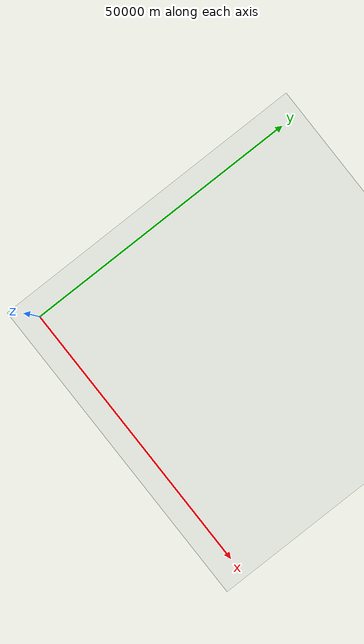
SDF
<sdf version="1.7">
 <world name="default">
  <light name="sun" type="directional">
   <pose>0 0 10 0 -0 0</pose>
   <diffuse>0.8 0.8 0.8 1</diffuse>
   <specular>0.2 0.2 0.2 1</specular>
   <attenuation>
    <range>1000</range>
    <constant>0.9</constant>
    <linear>0.01</linear>
    <quadratic>0.001</quadratic>
   </attenuation>
   <direction>-0.5 0.1 -0.9</direction>
   <spot><inner_angle>0</inner_angle><outer_angle>0</outer_angle><falloff>0</falloff></spot>
  </light>
  <model name="ground_plane">
   <static>1</static>
   <link name="link">
    <collision name="collision">
     <geometry><plane><normal>0 0 1</normal><size>100 100</size></plane></geometry>
     <surface><friction><ode><mu>100</mu><mu2>50</mu2></ode></friction></surface>
    </collision>
    <visual name="visual">
     <cast_shadows>0</cast_shadows>
     <geometry><plane><normal>0 0 1</normal><size>100 100</size></plane></geometry>
     <material>
      <script><uri>file://media/materials/scripts/gazebo.material</uri><name>Gazebo/Grey</name></script>
     </material>
    </visual>
   </link>
  </model>
  <gravity>0 0 -9.8</gravity>
  <magnetic_field>6e-06 2.3e-05 -4.2e-05</magnetic_field>
  <atmosphere type="adiabatic"/>
  <physics type="ode">
   <max_step_size>0.001</max_step_size>
   <real_time_factor>1</real_time_factor>
   <real_time_update_rate>1000</real_time_update_rate>
  </physics>
  <scene><ambient>0.4 0.4 0.4 1</ambient><background>0.7 0.7 0.7 1</background><shadows>1</shadows></scene>
  <audio><device>default</device></audio>
  <spherical_coordinates>
   <surface_model>EARTH_WGS84</surface_model>
   <latitude_deg>0</latitude_deg>
   <longitude_deg>0</longitude_deg>
   <elevation>0</elevation>
   <heading_deg>0</heading_deg>
  </spherical_coordinates>
  <model name="aruco_marker">
   <link name="link">
    <inertial>
     <mass>0.001</mass>
     <inertia>
      <ixx>3.75e-06</ixx>
      <ixy>0</ixy>
      <ixz>0</ixz>
      <iyy>1.875e-06</iyy>
      <iyz>0</iyz>
      <izz>1.875e-06</izz>
     </inertia>
    </inertial>
    <visual name="front_visual">
     <pose>5e-05 0 0 0 -0 0</pose>
     <geometry><box><size>0 0.15 0.15</size></box></geometry>
     <material>
      <script>
       <uri>model://aruco_marker/materials/scripts</uri>
       <uri>model://aruco_marker/materials/textures</uri>
       <name>Marker</name>
      </script>
     </material>
    </visual>
    <visual name="rear_visual">
     <pose>-5e-05 0 0 0 -0 0</pose>
     <geometry><box><size>0 0.15 0.15</size></box></geometry>
    </visual>
    <collision name="collision"><geometry><box><size>0 0.15 0.15</size></box></geometry></collision>
    <enable_wind>1</enable_wind>
   </link>
   <pose>-2.35803 0.304206 -350252 -0.000978 -0.382776 -2.5e-05</pose>
   <enable_wind>1</enable_wind>
  </model>
  <model name="aruco_marker_69_1">
   <link name="link">
    <inertial>
     <mass>0.515459</mass>
     <inertia>
      <ixx>0.00193297</ixx>
      <ixy>0</ixy>
      <ixz>0</ixz>
      <iyy>0.00322092</iyy>
      <iyz>0</iyz>
      <izz>0.00322092</izz>
     </inertia>
    </inertial>
    <enable_wind>1</enable_wind>
    <kinematic>1</kinematic>
    <visual name="front_visual">
     <pose>5e-05 0 0 0 -0 0</pose>
     <geometry><box><size>0.229093 0.186378 0.172656</size></box></geometry>
     <material>
      <script>
       <uri>model://aruco_marker/materials/scripts</uri>
       <uri>model://aruco_marker/materials/textures</uri>
       <name>Marker</name>
      </script>
      <shader type="pixel"><normal_map>__default__</normal_map></shader>
     </material>
    </visual>
    <visual name="rear_visual">
     <pose>-5e-05 0 0 0 -0 0</pose>
     <geometry><box><size>0.229093 0.186378 0.172656</size></box></geometry>
     <material><shader type="pixel"><normal_map>__default__</normal_map></shader></material>
    </visual>
    <collision name="collision">
     <geometry><box><size>0.229093 0.186378 0.172656</size></box></geometry>
     <surface>
      <friction>
       <ode><mu>1</mu><mu2>1</mu2><fdir1>0 0 0</fdir1><slip1>0</slip1><slip2>0</slip2></ode>
       <torsional>
        <coefficient>1</coefficient>
        <patch_radius>0</patch_radius>
        <surface_radius>0</surface_radius>
        <use_patch_radius>1</use_patch_radius>
        <ode><slip>0</slip></ode>
       </torsional>
      </friction>
      <bounce><restitution_coefficient>0</restitution_coefficient><threshold>1e+06</threshold></bounce>
      <contact>
       <collide_without_contact>0</collide_without_contact>
       <collide_without_contact_bitmask>1</collide_without_contact_bitmask>
       <collide_bitmask>1</collide_bitmask>
       <ode>
        <soft_cfm>0</soft_cfm>
        <soft_erp>0.2</soft_erp>
        <kp>1e+13</kp>
        <kd>1</kd>
        <max_vel>0.01</max_vel>
        <min_depth>0</min_depth>
       </ode>
       <bullet>
        <split_impulse>1</split_impulse>
        <split_impulse_penetration_threshold>-0.01</split_impulse_penetration_threshold>
        <soft_cfm>0</soft_cfm>
        <soft_erp>0.2</soft_erp>
        <kp>1e+13</kp>
        <kd>1</kd>
       </bullet>
      </contact>
     </surface>
    </collision>
   </link>
   <static>0</static>
   <pose>-3.69478 -0.005694 0.094836 0 -0 0</pose>
  </model>
 </world>
</sdf>
